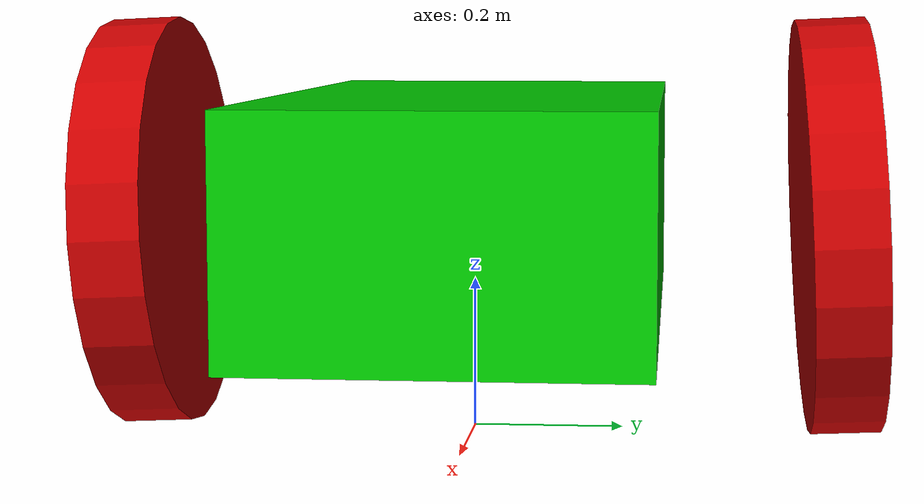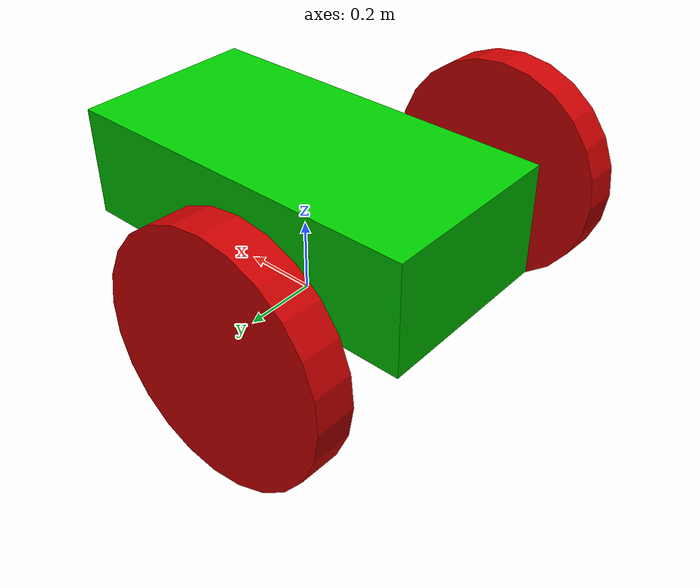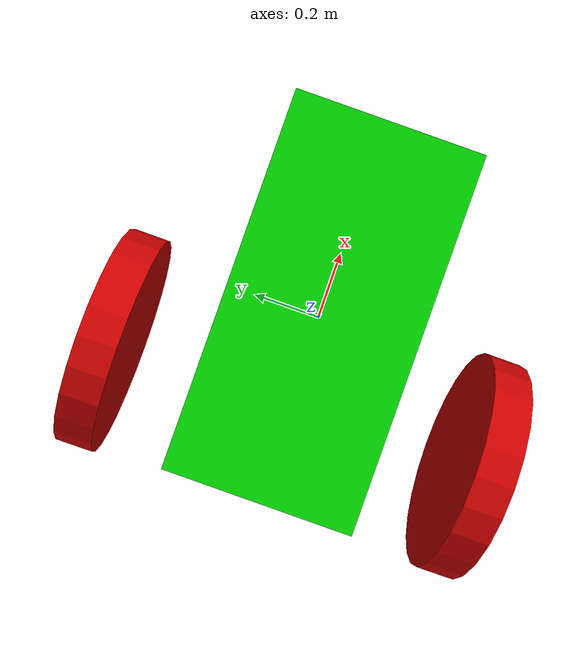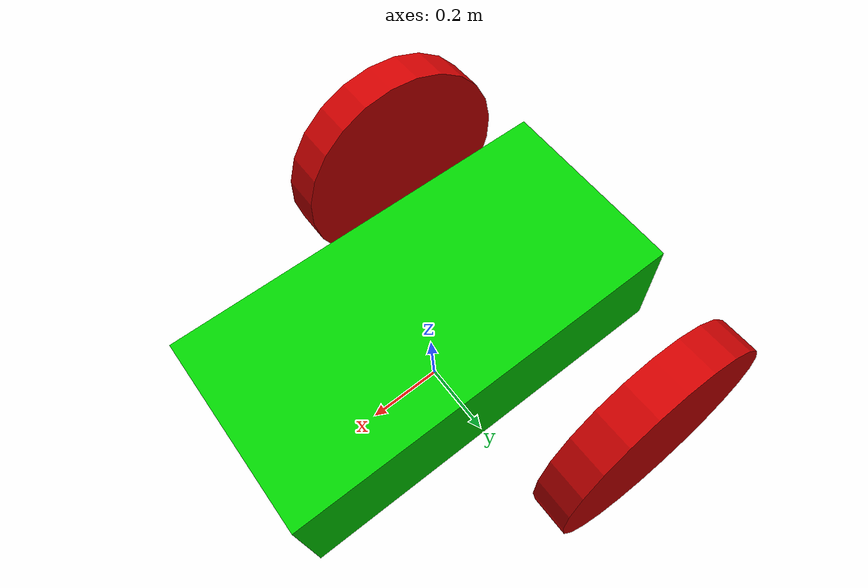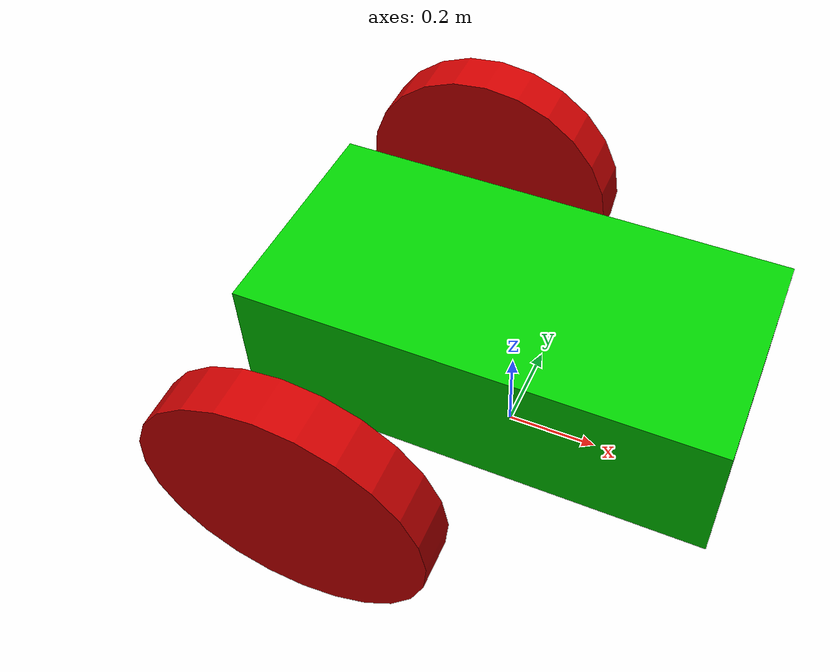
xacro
<?xml version="1.0"?>
<robot xmlns:xacro="http://www.ros.org/wiki/xacro" name="robot">
    <xacro:property name="PI" value="3.1416"/>

    <!-- Define material named "black" with RGBA color values -->
    <material name="black">
        <color rgba="0.0 0.0 0.0 1.0" />
    </material>

    <!-- Define material named "blue" with RGBA color values -->
    <material name="blue">
        <color rgba="0.0 0.0 0.8 1.0" />
    </material>

    <!-- Define material named "green" with RGBA color values -->
    <material name="green">
        <color rgba="0.0 0.8 0.0 1.0" />
    </material>

    <!-- Define material named "red" with RGBA color values -->
    <material name="red">
        <color rgba="0.8 0.0 0.0 1.0" />
    </material>

    <!-- Define link named "world" -->
    <link name="world" />

    <!-- Define link named "base" -->
    <link name="base">
        <collision>
            <origin xyz="0 0 0.3" rpy="0 0 0" />
            <geometry>
                <box size="1 0.5 0.3" />
            </geometry>
        </collision>
        <visual>
            <origin xyz="0 0 0.3" rpy="0 0 0" />
            <geometry>
                <box size="1 0.5 0.3" />
            </geometry>
            <material name="green" />
        </visual>
        <inertial>
            <mass value = "1.0" />
            <inertia ixx = "0.01" ixy = "0.0" ixz = "0.0"
                     iyy = "0.01" iyz = "0.0" izz = "0.01" />
        </inertial>
    </link>

    <!-- Define link named "rotor1" -->
    <link name="rotor1">
        <collision>
            <origin xyz="0 0 0" rpy="0 0 0" />
            <geometry>
                <cylinder radius="0.3" length="0.1" />
            </geometry>
        </collision>
        <visual>
            <origin xyz="0 0 0" rpy="0 0 0" />
            <geometry>
                <cylinder radius="0.3" length="0.1" />
            </geometry>
            <material name="red" />
        </visual>
        <inertial>
            <mass value = "1.0" />
            <inertia ixx = "0.01" ixy = "0.0" ixz = "0.0"
                     iyy = "0.01" iyz = "0.0" izz = "0.01" />
        </inertial>
    </link>

    <!-- Define link named "rotor2" -->
    <link name="rotor2">
        <collision>
            <origin xyz="0 0 0" rpy="0 0 0" />
            <geometry>
                <cylinder radius="0.3" length="0.1" />
            </geometry>
        </collision>
        <visual>
            <origin xyz="0 0 0" rpy="0 0 0" />
            <geometry>
                <cylinder radius="0.3" length="0.1" />
            </geometry>
            <material name="red" />
        </visual>
        <inertial>
            <mass value = "1.0" />
            <inertia ixx = "0.01" ixy = "0.0" ixz = "0.0"
                     iyy = "0.01" iyz = "0.0" izz = "0.01" />
        </inertial>
    </link>

    <!-- Define joint named "joint1" with type "fixed" -->
    <joint name="joint1" type="fixed">
        <parent link="world" />
        <child link="base" />
        <origin xyz="0 0 0" rpy="0 0 0" />
        <axis xyz="0 1 0" />
    </joint>

    <!-- Define joint named "joint2" with type "continuous" -->
    <joint name="joint2" type="continuous">
        <parent link="base" />
        <child link="rotor1" />
        <origin xyz="-0.25 0.5 0.25" rpy="-1.5236 0 0" />
        <axis xyz="0 0 1" />
    </joint>

    <!-- Define joint named "joint3" with type "continuous" -->
    <joint name="joint3" type="continuous">
        <parent link="base" />
        <child link="rotor2" />
        <origin xyz="-0.25 -0.5 0.25" rpy="-1.5236 0 0" />
        <axis xyz="0 0 1" />
    </joint>

  <ros2_control name="arduino_actuator_ros2_control" type="system">
    <hardware>
      <plugin>arduino_controller/ArduinoInterface</plugin>
        <param name="port">/dev/ttyACM0</param>

    </hardware>

    <joint name="joint2">
        <command_interface name="velocity">
        </command_interface>
        <state_interface name="velocity"/>
        <state_interface name="position"/>
    </joint>

    <joint name="joint3">
        <command_interface name="velocity">
        </command_interface>
        <state_interface name="velocity"/>
        <state_interface name="position"/>
    </joint>
  </ros2_control>
</robot>
